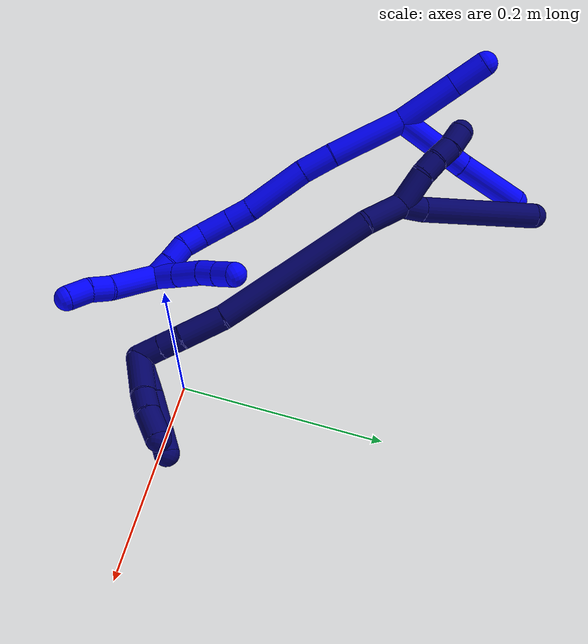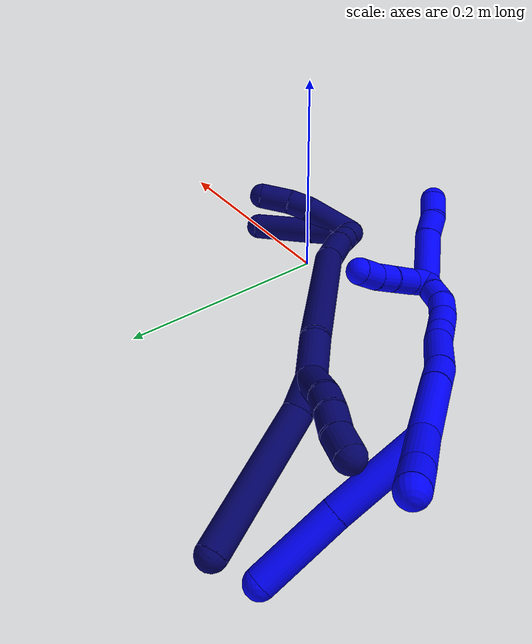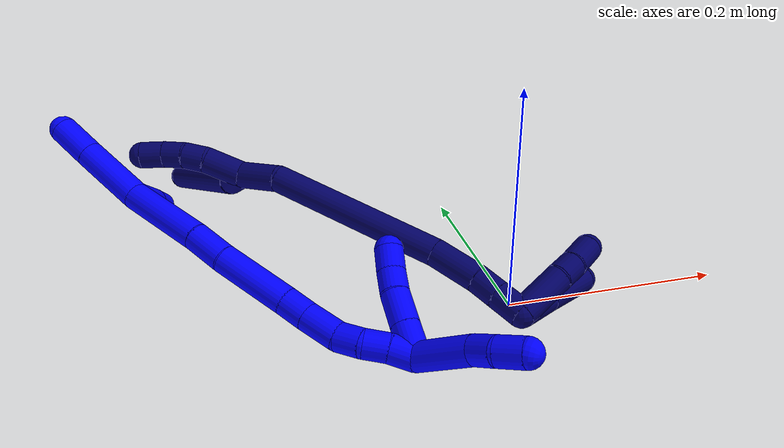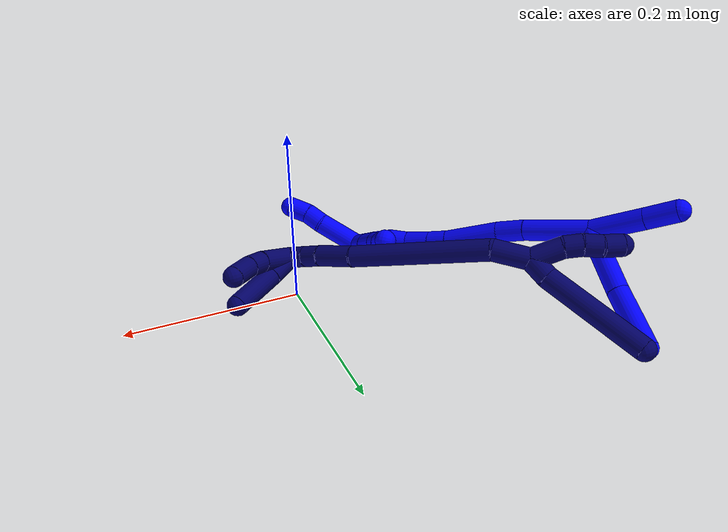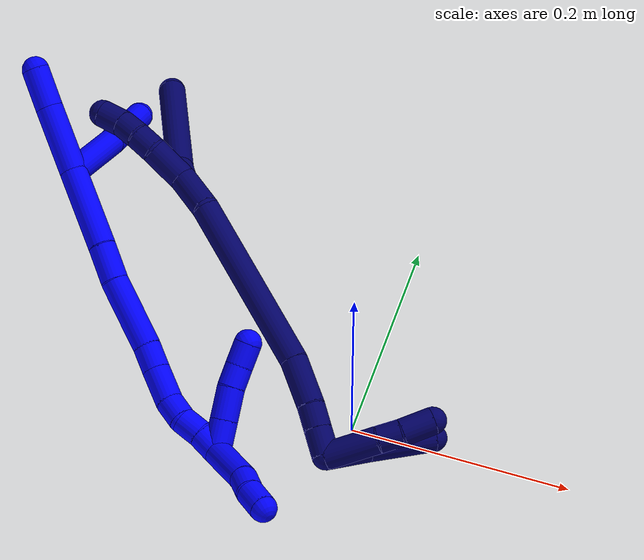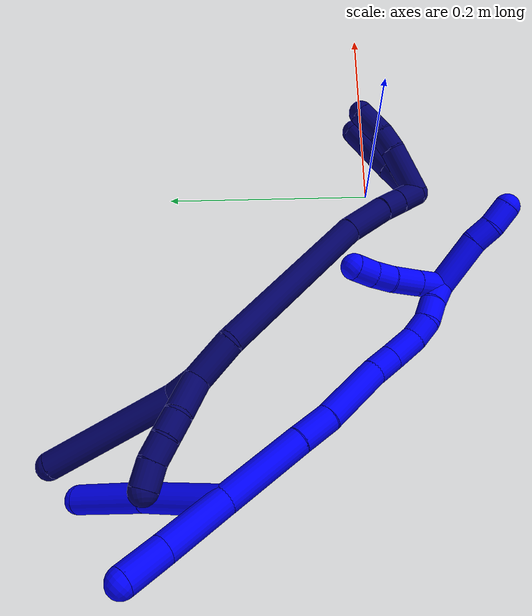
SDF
<sdf version="1.7">
 <world name="default">
  <model name="1">
   <static>0</static>
   <link name="1">
    <collision name="collision-cylinder-e_1_2_8">
     <pose>-0.029915 0.015747 0.020905 -0.645601 -0.85204 0.301301</pose>
     <geometry><cylinder><radius>0.0125</radius><length>0.079496</length></cylinder></geometry>
     <surface>
      <friction><ode><mu>1.16</mu><mu2>1.16</mu2><slip1>0</slip1><slip2>0</slip2></ode></friction>
      <contact><ode><kp>1e+06</kp><kd>1</kd><max_vel>0</max_vel><min_depth>0.001</min_depth></ode></contact>
     </surface>
    </collision>
    <visual name="visual-cylinder-e_1_2_8">
     <pose>-0.029915 0.015747 0.020905 -0.645601 -0.85204 0.301301</pose>
     <geometry><cylinder><radius>0.0125</radius><length>0.079496</length></cylinder></geometry>
     <material><ambient>0 0 1 1</ambient></material>
    </visual>
    <collision name="collision-cylinder-e_2_8_6">
     <pose>-0.085674 0.044643 0.061858 -0.580463 -0.822875 0.259179</pose>
     <geometry><cylinder><radius>0.0125</radius><length>0.070504</length></cylinder></geometry>
     <surface>
      <friction><ode><mu>1.16</mu><mu2>1.16</mu2><slip1>0</slip1><slip2>0</slip2></ode></friction>
      <contact><ode><kp>1e+06</kp><kd>1</kd><max_vel>0</max_vel><min_depth>0.001</min_depth></ode></contact>
     </surface>
    </collision>
    <visual name="visual-cylinder-e_2_8_6">
     <pose>-0.085674 0.044643 0.061858 -0.580463 -0.822875 0.259179</pose>
     <geometry><cylinder><radius>0.0125</radius><length>0.070504</length></cylinder></geometry>
     <material><ambient>0 0 1 1</ambient></material>
    </visual>
    <collision name="collision-cylinder-e_1_2_9">
     <pose>0.011663 0.009392 0.027526 -0.328805 0.381384 -0.064028</pose>
     <geometry><cylinder><radius>0.0125</radius><length>0.062671</length></cylinder></geometry>
     <surface>
      <friction><ode><mu>1.16</mu><mu2>1.16</mu2><slip1>0</slip1><slip2>0</slip2></ode></friction>
      <contact><ode><kp>1e+06</kp><kd>1</kd><max_vel>0</max_vel><min_depth>0.001</min_depth></ode></contact>
     </surface>
    </collision>
    <visual name="visual-cylinder-e_1_2_9">
     <pose>0.011663 0.009392 0.027526 -0.328805 0.381384 -0.064028</pose>
     <geometry><cylinder><radius>0.0125</radius><length>0.062671</length></cylinder></geometry>
     <material><ambient>0 0 1 1</ambient></material>
    </visual>
    <collision name="collision-cylinder-e_2_9_5">
     <pose>0.030401 0.024668 0.071291 -0.347682 0.388746 -0.069115</pose>
     <geometry><cylinder><radius>0.0125</radius><length>0.037329</length></cylinder></geometry>
     <surface>
      <friction><ode><mu>1.16</mu><mu2>1.16</mu2><slip1>0</slip1><slip2>0</slip2></ode></friction>
      <contact><ode><kp>1e+06</kp><kd>1</kd><max_vel>0</max_vel><min_depth>0.001</min_depth></ode></contact>
     </surface>
    </collision>
    <visual name="visual-cylinder-e_2_9_5">
     <pose>0.030401 0.024668 0.071291 -0.347682 0.388746 -0.069115</pose>
     <geometry><cylinder><radius>0.0125</radius><length>0.037329</length></cylinder></geometry>
     <material><ambient>0 0 1 1</ambient></material>
    </visual>
    <collision name="collision-cylinder-e_1_2_10">
     <pose>-0.006516 -0.009317 -0.037463 2.89785 -0.167205 -1.20006</pose>
     <geometry><cylinder><radius>0.0125</radius><length>0.0783</length></cylinder></geometry>
     <surface>
      <friction><ode><mu>1.16</mu><mu2>1.16</mu2><slip1>0</slip1><slip2>0</slip2></ode></friction>
      <contact><ode><kp>1e+06</kp><kd>1</kd><max_vel>0</max_vel><min_depth>0.001</min_depth></ode></contact>
     </surface>
    </collision>
    <visual name="visual-cylinder-e_1_2_10">
     <pose>-0.006516 -0.009317 -0.037463 2.89785 -0.167205 -1.20006</pose>
     <geometry><cylinder><radius>0.0125</radius><length>0.0783</length></cylinder></geometry>
     <material><ambient>0 0 1 1</ambient></material>
    </visual>
    <collision name="collision-cylinder-e_2_10_11">
     <pose>-0.017143 -0.023383 -0.090851 2.85172 -0.242556 -1.39143</pose>
     <geometry><cylinder><radius>0.0125</radius><length>0.034239</length></cylinder></geometry>
     <surface>
      <friction><ode><mu>1.16</mu><mu2>1.16</mu2><slip1>0</slip1><slip2>0</slip2></ode></friction>
      <contact><ode><kp>1e+06</kp><kd>1</kd><max_vel>0</max_vel><min_depth>0.001</min_depth></ode></contact>
     </surface>
    </collision>
    <visual name="visual-cylinder-e_2_10_11">
     <pose>-0.017143 -0.023383 -0.090851 2.85172 -0.242556 -1.39143</pose>
     <geometry><cylinder><radius>0.0125</radius><length>0.034239</length></cylinder></geometry>
     <material><ambient>0 0 1 1</ambient></material>
    </visual>
    <collision name="collision-cylinder-e_3_11_12">
     <pose>-0.032321 -0.034599 -0.13748 2.93404 -0.339058 -2.04837</pose>
     <geometry><cylinder><radius>0.0125</radius><length>0.066544</length></cylinder></geometry>
     <surface>
      <friction><ode><mu>1.16</mu><mu2>1.16</mu2><slip1>0</slip1><slip2>0</slip2></ode></friction>
      <contact><ode><kp>1e+06</kp><kd>1</kd><max_vel>0</max_vel><min_depth>0.001</min_depth></ode></contact>
     </surface>
    </collision>
    <visual name="visual-cylinder-e_3_11_12">
     <pose>-0.032321 -0.034599 -0.13748 2.93404 -0.339058 -2.04837</pose>
     <geometry><cylinder><radius>0.0125</radius><length>0.066544</length></cylinder></geometry>
     <material><ambient>0 0 1 1</ambient></material>
    </visual>
    <collision name="collision-cylinder-e_4_12_13">
     <pose>-0.046033 -0.043985 -0.179445 2.88788 -0.223622 -1.44369</pose>
     <geometry><cylinder><radius>0.0125</radius><length>0.023859</length></cylinder></geometry>
     <surface>
      <friction><ode><mu>1.16</mu><mu2>1.16</mu2><slip1>0</slip1><slip2>0</slip2></ode></friction>
      <contact><ode><kp>1e+06</kp><kd>1</kd><max_vel>0</max_vel><min_depth>0.001</min_depth></ode></contact>
     </surface>
    </collision>
    <visual name="visual-cylinder-e_4_12_13">
     <pose>-0.046033 -0.043985 -0.179445 2.88788 -0.223622 -1.44369</pose>
     <geometry><cylinder><radius>0.0125</radius><length>0.023859</length></cylinder></geometry>
     <material><ambient>0 0 1 1</ambient></material>
    </visual>
    <collision name="collision-cylinder-e_5_13_14">
     <pose>-0.051768 -0.050335 -0.206055 2.92175 -0.193927 -1.44478</pose>
     <geometry><cylinder><radius>0.0125</radius><length>0.032059</length></cylinder></geometry>
     <surface>
      <friction><ode><mu>1.16</mu><mu2>1.16</mu2><slip1>0</slip1><slip2>0</slip2></ode></friction>
      <contact><ode><kp>1e+06</kp><kd>1</kd><max_vel>0</max_vel><min_depth>0.001</min_depth></ode></contact>
     </surface>
    </collision>
    <visual name="visual-cylinder-e_5_13_14">
     <pose>-0.051768 -0.050335 -0.206055 2.92175 -0.193927 -1.44478</pose>
     <geometry><cylinder><radius>0.0125</radius><length>0.032059</length></cylinder></geometry>
     <material><ambient>0 0 1 1</ambient></material>
    </visual>
    <collision name="collision-cylinder-e_6_14_15">
     <pose>-0.055504 -0.05338 -0.232438 -3.10674 -0.05859 2.06838</pose>
     <geometry><cylinder><radius>0.0125</radius><length>0.022116</length></cylinder></geometry>
     <surface>
      <friction><ode><mu>1.16</mu><mu2>1.16</mu2><slip1>0</slip1><slip2>0</slip2></ode></friction>
      <contact><ode><kp>1e+06</kp><kd>1</kd><max_vel>0</max_vel><min_depth>0.001</min_depth></ode></contact>
     </surface>
    </collision>
    <visual name="visual-cylinder-e_6_14_15">
     <pose>-0.055504 -0.05338 -0.232438 -3.10674 -0.05859 2.06838</pose>
     <geometry><cylinder><radius>0.0125</radius><length>0.022116</length></cylinder></geometry>
     <material><ambient>0 0 1 1</ambient></material>
    </visual>
    <collision name="collision-cylinder-e_7_15_16">
     <pose>-0.059526 -0.050392 -0.253192 -2.87989 -0.323451 1.78405</pose>
     <geometry><cylinder><radius>0.0125</radius><length>0.02123</length></cylinder></geometry>
     <surface>
      <friction><ode><mu>1.16</mu><mu2>1.16</mu2><slip1>0</slip1><slip2>0</slip2></ode></friction>
      <contact><ode><kp>1e+06</kp><kd>1</kd><max_vel>0</max_vel><min_depth>0.001</min_depth></ode></contact>
     </surface>
    </collision>
    <visual name="visual-cylinder-e_7_15_16">
     <pose>-0.059526 -0.050392 -0.253192 -2.87989 -0.323451 1.78405</pose>
     <geometry><cylinder><radius>0.0125</radius><length>0.02123</length></cylinder></geometry>
     <material><ambient>0 0 1 1</ambient></material>
    </visual>
    <collision name="collision-cylinder-e_8_16_1">
     <pose>-0.066859 -0.04672 -0.272933 -3.03539 -0.374427 2.59448</pose>
     <geometry><cylinder><radius>0.0125</radius><length>0.021653</length></cylinder></geometry>
     <surface>
      <friction><ode><mu>1.16</mu><mu2>1.16</mu2><slip1>0</slip1><slip2>0</slip2></ode></friction>
      <contact><ode><kp>1e+06</kp><kd>1</kd><max_vel>0</max_vel><min_depth>0.001</min_depth></ode></contact>
     </surface>
    </collision>
    <visual name="visual-cylinder-e_8_16_1">
     <pose>-0.066859 -0.04672 -0.272933 -3.03539 -0.374427 2.59448</pose>
     <geometry><cylinder><radius>0.0125</radius><length>0.021653</length></cylinder></geometry>
     <material><ambient>0 0 1 1</ambient></material>
    </visual>
    <collision name="collision-cylinder-e_1_1_17">
     <pose>-0.061743 -0.040176 -0.307669 -2.92359 0.344227 -2.01786</pose>
     <geometry><cylinder><radius>0.0125</radius><length>0.053786</length></cylinder></geometry>
     <surface>
      <friction><ode><mu>1.16</mu><mu2>1.16</mu2><slip1>0</slip1><slip2>0</slip2></ode></friction>
      <contact><ode><kp>1e+06</kp><kd>1</kd><max_vel>0</max_vel><min_depth>0.001</min_depth></ode></contact>
     </surface>
    </collision>
    <visual name="visual-cylinder-e_1_1_17">
     <pose>-0.061743 -0.040176 -0.307669 -2.92359 0.344227 -2.01786</pose>
     <geometry><cylinder><radius>0.0125</radius><length>0.053786</length></cylinder></geometry>
     <material><ambient>0 0 1 1</ambient></material>
    </visual>
    <collision name="collision-cylinder-e_2_17_18">
     <pose>-0.048302 -0.034663 -0.342479 -3.13782 0.408232 -3.12335</pose>
     <geometry><cylinder><radius>0.0125</radius><length>0.021995</length></cylinder></geometry>
     <surface>
      <friction><ode><mu>1.16</mu><mu2>1.16</mu2><slip1>0</slip1><slip2>0</slip2></ode></friction>
      <contact><ode><kp>1e+06</kp><kd>1</kd><max_vel>0</max_vel><min_depth>0.001</min_depth></ode></contact>
     </surface>
    </collision>
    <visual name="visual-cylinder-e_2_17_18">
     <pose>-0.048302 -0.034663 -0.342479 -3.13782 0.408232 -3.12335</pose>
     <geometry><cylinder><radius>0.0125</radius><length>0.021995</length></cylinder></geometry>
     <material><ambient>0 0 1 1</ambient></material>
    </visual>
    <collision name="collision-cylinder-e_3_18_4">
     <pose>-0.041764 -0.033033 -0.364379 -3.00759 0.180365 -1.86479</pose>
     <geometry><cylinder><radius>0.0125</radius><length>0.024219</length></cylinder></geometry>
     <surface>
      <friction><ode><mu>1.16</mu><mu2>1.16</mu2><slip1>0</slip1><slip2>0</slip2></ode></friction>
      <contact><ode><kp>1e+06</kp><kd>1</kd><max_vel>0</max_vel><min_depth>0.001</min_depth></ode></contact>
     </surface>
    </collision>
    <visual name="visual-cylinder-e_3_18_4">
     <pose>-0.041764 -0.033033 -0.364379 -3.00759 0.180365 -1.86479</pose>
     <geometry><cylinder><radius>0.0125</radius><length>0.024219</length></cylinder></geometry>
     <material><ambient>0 0 1 1</ambient></material>
    </visual>
    <collision name="collision-cylinder-e_1_1_19">
     <pose>-0.068661 -0.034897 -0.274114 -0.882801 0.153756 -0.07276</pose>
     <geometry><cylinder><radius>0.0125</radius><length>0.028174</length></cylinder></geometry>
     <surface>
      <friction><ode><mu>1.16</mu><mu2>1.16</mu2><slip1>0</slip1><slip2>0</slip2></ode></friction>
      <contact><ode><kp>1e+06</kp><kd>1</kd><max_vel>0</max_vel><min_depth>0.001</min_depth></ode></contact>
     </surface>
    </collision>
    <visual name="visual-cylinder-e_1_1_19">
     <pose>-0.068661 -0.034897 -0.274114 -0.882801 0.153756 -0.07276</pose>
     <geometry><cylinder><radius>0.0125</radius><length>0.028174</length></cylinder></geometry>
     <material><ambient>0 0 1 1</ambient></material>
    </visual>
    <collision name="collision-cylinder-e_2_19_20">
     <pose>-0.063879 -0.012691 -0.256122 -0.896563 0.177182 -0.085385</pose>
     <geometry><cylinder><radius>0.0125</radius><length>0.029786</length></cylinder></geometry>
     <surface>
      <friction><ode><mu>1.16</mu><mu2>1.16</mu2><slip1>0</slip1><slip2>0</slip2></ode></friction>
      <contact><ode><kp>1e+06</kp><kd>1</kd><max_vel>0</max_vel><min_depth>0.001</min_depth></ode></contact>
     </surface>
    </collision>
    <visual name="visual-cylinder-e_2_19_20">
     <pose>-0.063879 -0.012691 -0.256122 -0.896563 0.177182 -0.085385</pose>
     <geometry><cylinder><radius>0.0125</radius><length>0.029786</length></cylinder></geometry>
     <material><ambient>0 0 1 1</ambient></material>
    </visual>
    <collision name="collision-cylinder-e_3_20_21">
     <pose>-0.060446 0.007303 -0.241547 -1.00514 0.079702 -0.043824</pose>
     <geometry><cylinder><radius>0.0125</radius><length>0.020299</length></cylinder></geometry>
     <surface>
      <friction><ode><mu>1.16</mu><mu2>1.16</mu2><slip1>0</slip1><slip2>0</slip2></ode></friction>
      <contact><ode><kp>1e+06</kp><kd>1</kd><max_vel>0</max_vel><min_depth>0.001</min_depth></ode></contact>
     </surface>
    </collision>
    <visual name="visual-cylinder-e_3_20_21">
     <pose>-0.060446 0.007303 -0.241547 -1.00514 0.079702 -0.043824</pose>
     <geometry><cylinder><radius>0.0125</radius><length>0.020299</length></cylinder></geometry>
     <material><ambient>0 0 1 1</ambient></material>
    </visual>
    <collision name="collision-cylinder-e_4_21_3">
     <pose>-0.05765 0.025302 -0.231148 -1.08645 0.183896 -0.111239</pose>
     <geometry><cylinder><radius>0.0125</radius><length>0.02174</length></cylinder></geometry>
     <surface>
      <friction><ode><mu>1.16</mu><mu2>1.16</mu2><slip1>0</slip1><slip2>0</slip2></ode></friction>
      <contact><ode><kp>1e+06</kp><kd>1</kd><max_vel>0</max_vel><min_depth>0.001</min_depth></ode></contact>
     </surface>
    </collision>
    <visual name="visual-cylinder-e_4_21_3">
     <pose>-0.05765 0.025302 -0.231148 -1.08645 0.183896 -0.111239</pose>
     <geometry><cylinder><radius>0.0125</radius><length>0.02174</length></cylinder></geometry>
     <material><ambient>0 0 1 1</ambient></material>
    </visual>
    <collision name="collision-sphere-3">
     <pose>-0.055662 0.03476 -0.226172 0 -0 0</pose>
     <geometry><sphere><radius>0.0125</radius></sphere></geometry>
     <surface>
      <friction><ode><mu>1.16</mu><mu2>1.16</mu2><slip1>0</slip1><slip2>0</slip2></ode></friction>
      <contact><ode><kp>1e+06</kp><kd>1</kd><max_vel>0</max_vel><min_depth>0.001</min_depth></ode></contact>
     </surface>
    </collision>
    <visual name="visual-sphere-3">
     <pose>-0.055662 0.03476 -0.226172 0 -0 0</pose>
     <geometry><sphere><radius>0.0125</radius></sphere></geometry>
     <material><ambient>0 0 1 1</ambient></material>
    </visual>
    <collision name="collision-sphere-21">
     <pose>-0.059638 0.015845 -0.236124 0 -0 0</pose>
     <geometry><sphere><radius>0.0125</radius></sphere></geometry>
     <surface>
      <friction><ode><mu>1.16</mu><mu2>1.16</mu2><slip1>0</slip1><slip2>0</slip2></ode></friction>
      <contact><ode><kp>1e+06</kp><kd>1</kd><max_vel>0</max_vel><min_depth>0.001</min_depth></ode></contact>
     </surface>
    </collision>
    <visual name="visual-sphere-21">
     <pose>-0.059638 0.015845 -0.236124 0 -0 0</pose>
     <geometry><sphere><radius>0.0125</radius></sphere></geometry>
     <material><ambient>0 0 1 1</ambient></material>
    </visual>
    <collision name="collision-sphere-20">
     <pose>-0.061254 -0.001238 -0.246969 0 -0 0</pose>
     <geometry><sphere><radius>0.0125</radius></sphere></geometry>
     <surface>
      <friction><ode><mu>1.16</mu><mu2>1.16</mu2><slip1>0</slip1><slip2>0</slip2></ode></friction>
      <contact><ode><kp>1e+06</kp><kd>1</kd><max_vel>0</max_vel><min_depth>0.001</min_depth></ode></contact>
     </surface>
    </collision>
    <visual name="visual-sphere-20">
     <pose>-0.061254 -0.001238 -0.246969 0 -0 0</pose>
     <geometry><sphere><radius>0.0125</radius></sphere></geometry>
     <material><ambient>0 0 1 1</ambient></material>
    </visual>
    <collision name="collision-sphere-19">
     <pose>-0.066504 -0.024143 -0.265274 0 -0 0</pose>
     <geometry><sphere><radius>0.0125</radius></sphere></geometry>
     <surface>
      <friction><ode><mu>1.16</mu><mu2>1.16</mu2><slip1>0</slip1><slip2>0</slip2></ode></friction>
      <contact><ode><kp>1e+06</kp><kd>1</kd><max_vel>0</max_vel><min_depth>0.001</min_depth></ode></contact>
     </surface>
    </collision>
    <visual name="visual-sphere-19">
     <pose>-0.066504 -0.024143 -0.265274 0 -0 0</pose>
     <geometry><sphere><radius>0.0125</radius></sphere></geometry>
     <material><ambient>0 0 1 1</ambient></material>
    </visual>
    <collision name="collision-sphere-10">
     <pose>-0.013031 -0.018633 -0.074926 0 -0 0</pose>
     <geometry><sphere><radius>0.0125</radius></sphere></geometry>
     <surface>
      <friction><ode><mu>1.16</mu><mu2>1.16</mu2><slip1>0</slip1><slip2>0</slip2></ode></friction>
      <contact><ode><kp>1e+06</kp><kd>1</kd><max_vel>0</max_vel><min_depth>0.001</min_depth></ode></contact>
     </surface>
    </collision>
    <visual name="visual-sphere-10">
     <pose>-0.013031 -0.018633 -0.074926 0 -0 0</pose>
     <geometry><sphere><radius>0.0125</radius></sphere></geometry>
     <material><ambient>0 0 1 1</ambient></material>
    </visual>
    <collision name="collision-sphere-5">
     <pose>0.037475 0.030553 0.087529 0 -0 0</pose>
     <geometry><sphere><radius>0.0125</radius></sphere></geometry>
     <surface>
      <friction><ode><mu>1.16</mu><mu2>1.16</mu2><slip1>0</slip1><slip2>0</slip2></ode></friction>
      <contact><ode><kp>1e+06</kp><kd>1</kd><max_vel>0</max_vel><min_depth>0.001</min_depth></ode></contact>
     </surface>
    </collision>
    <visual name="visual-sphere-5">
     <pose>0.037475 0.030553 0.087529 0 -0 0</pose>
     <geometry><sphere><radius>0.0125</radius></sphere></geometry>
     <material><ambient>0 0 1 1</ambient></material>
    </visual>
    <collision name="collision-sphere-6">
     <pose>-0.111517 0.057791 0.081906 0 -0 0</pose>
     <geometry><sphere><radius>0.0125</radius></sphere></geometry>
     <surface>
      <friction><ode><mu>1.16</mu><mu2>1.16</mu2><slip1>0</slip1><slip2>0</slip2></ode></friction>
      <contact><ode><kp>1e+06</kp><kd>1</kd><max_vel>0</max_vel><min_depth>0.001</min_depth></ode></contact>
     </surface>
    </collision>
    <visual name="visual-sphere-6">
     <pose>-0.111517 0.057791 0.081906 0 -0 0</pose>
     <geometry><sphere><radius>0.0125</radius></sphere></geometry>
     <material><ambient>0 0 1 1</ambient></material>
    </visual>
    <collision name="collision-sphere-9">
     <pose>0.023327 0.018783 0.055052 0 -0 0</pose>
     <geometry><sphere><radius>0.0125</radius></sphere></geometry>
     <surface>
      <friction><ode><mu>1.16</mu><mu2>1.16</mu2><slip1>0</slip1><slip2>0</slip2></ode></friction>
      <contact><ode><kp>1e+06</kp><kd>1</kd><max_vel>0</max_vel><min_depth>0.001</min_depth></ode></contact>
     </surface>
    </collision>
    <visual name="visual-sphere-9">
     <pose>0.023327 0.018783 0.055052 0 -0 0</pose>
     <geometry><sphere><radius>0.0125</radius></sphere></geometry>
     <material><ambient>0 0 1 1</ambient></material>
    </visual>
    <collision name="collision-sphere-2">
     <geometry><sphere><radius>0.0125</radius></sphere></geometry>
     <surface>
      <friction><ode><mu>1.16</mu><mu2>1.16</mu2><slip1>0</slip1><slip2>0</slip2></ode></friction>
      <contact><ode><kp>1e+06</kp><kd>1</kd><max_vel>0</max_vel><min_depth>0.001</min_depth></ode></contact>
     </surface>
    </collision>
    <visual name="visual-sphere-2">
     <geometry><sphere><radius>0.0125</radius></sphere></geometry>
     <material><ambient>0 0 1 1</ambient></material>
    </visual>
    <collision name="collision-sphere-8">
     <pose>-0.059831 0.031494 0.041809 0 -0 0</pose>
     <geometry><sphere><radius>0.0125</radius></sphere></geometry>
     <surface>
      <friction><ode><mu>1.16</mu><mu2>1.16</mu2><slip1>0</slip1><slip2>0</slip2></ode></friction>
      <contact><ode><kp>1e+06</kp><kd>1</kd><max_vel>0</max_vel><min_depth>0.001</min_depth></ode></contact>
     </surface>
    </collision>
    <visual name="visual-sphere-8">
     <pose>-0.059831 0.031494 0.041809 0 -0 0</pose>
     <geometry><sphere><radius>0.0125</radius></sphere></geometry>
     <material><ambient>0 0 1 1</ambient></material>
    </visual>
    <collision name="collision-sphere-11">
     <pose>-0.021255 -0.028133 -0.106776 0 -0 0</pose>
     <geometry><sphere><radius>0.0125</radius></sphere></geometry>
     <surface>
      <friction><ode><mu>1.16</mu><mu2>1.16</mu2><slip1>0</slip1><slip2>0</slip2></ode></friction>
      <contact><ode><kp>1e+06</kp><kd>1</kd><max_vel>0</max_vel><min_depth>0.001</min_depth></ode></contact>
     </surface>
    </collision>
    <visual name="visual-sphere-11">
     <pose>-0.021255 -0.028133 -0.106776 0 -0 0</pose>
     <geometry><sphere><radius>0.0125</radius></sphere></geometry>
     <material><ambient>0 0 1 1</ambient></material>
    </visual>
    <collision name="collision-sphere-12">
     <pose>-0.043387 -0.041065 -0.168185 0 -0 0</pose>
     <geometry><sphere><radius>0.0125</radius></sphere></geometry>
     <surface>
      <friction><ode><mu>1.16</mu><mu2>1.16</mu2><slip1>0</slip1><slip2>0</slip2></ode></friction>
      <contact><ode><kp>1e+06</kp><kd>1</kd><max_vel>0</max_vel><min_depth>0.001</min_depth></ode></contact>
     </surface>
    </collision>
    <visual name="visual-sphere-12">
     <pose>-0.043387 -0.041065 -0.168185 0 -0 0</pose>
     <geometry><sphere><radius>0.0125</radius></sphere></geometry>
     <material><ambient>0 0 1 1</ambient></material>
    </visual>
    <collision name="collision-sphere-13">
     <pose>-0.048678 -0.046905 -0.190705 0 -0 0</pose>
     <geometry><sphere><radius>0.0125</radius></sphere></geometry>
     <surface>
      <friction><ode><mu>1.16</mu><mu2>1.16</mu2><slip1>0</slip1><slip2>0</slip2></ode></friction>
      <contact><ode><kp>1e+06</kp><kd>1</kd><max_vel>0</max_vel><min_depth>0.001</min_depth></ode></contact>
     </surface>
    </collision>
    <visual name="visual-sphere-13">
     <pose>-0.048678 -0.046905 -0.190705 0 -0 0</pose>
     <geometry><sphere><radius>0.0125</radius></sphere></geometry>
     <material><ambient>0 0 1 1</ambient></material>
    </visual>
    <collision name="collision-sphere-14">
     <pose>-0.054857 -0.053765 -0.221406 0 -0 0</pose>
     <geometry><sphere><radius>0.0125</radius></sphere></geometry>
     <surface>
      <friction><ode><mu>1.16</mu><mu2>1.16</mu2><slip1>0</slip1><slip2>0</slip2></ode></friction>
      <contact><ode><kp>1e+06</kp><kd>1</kd><max_vel>0</max_vel><min_depth>0.001</min_depth></ode></contact>
     </surface>
    </collision>
    <visual name="visual-sphere-14">
     <pose>-0.054857 -0.053765 -0.221406 0 -0 0</pose>
     <geometry><sphere><radius>0.0125</radius></sphere></geometry>
     <material><ambient>0 0 1 1</ambient></material>
    </visual>
    <collision name="collision-sphere-15">
     <pose>-0.056152 -0.052996 -0.24347 0 -0 0</pose>
     <geometry><sphere><radius>0.0125</radius></sphere></geometry>
     <surface>
      <friction><ode><mu>1.16</mu><mu2>1.16</mu2><slip1>0</slip1><slip2>0</slip2></ode></friction>
      <contact><ode><kp>1e+06</kp><kd>1</kd><max_vel>0</max_vel><min_depth>0.001</min_depth></ode></contact>
     </surface>
    </collision>
    <visual name="visual-sphere-15">
     <pose>-0.056152 -0.052996 -0.24347 0 -0 0</pose>
     <geometry><sphere><radius>0.0125</radius></sphere></geometry>
     <material><ambient>0 0 1 1</ambient></material>
    </visual>
    <collision name="collision-sphere-16">
     <pose>-0.062899 -0.047788 -0.262914 0 -0 0</pose>
     <geometry><sphere><radius>0.0125</radius></sphere></geometry>
     <surface>
      <friction><ode><mu>1.16</mu><mu2>1.16</mu2><slip1>0</slip1><slip2>0</slip2></ode></friction>
      <contact><ode><kp>1e+06</kp><kd>1</kd><max_vel>0</max_vel><min_depth>0.001</min_depth></ode></contact>
     </surface>
    </collision>
    <visual name="visual-sphere-16">
     <pose>-0.062899 -0.047788 -0.262914 0 -0 0</pose>
     <geometry><sphere><radius>0.0125</radius></sphere></geometry>
     <material><ambient>0 0 1 1</ambient></material>
    </visual>
    <collision name="collision-sphere-1">
     <pose>-0.070819 -0.045651 -0.282953 0 -0 0</pose>
     <geometry><sphere><radius>0.0125</radius></sphere></geometry>
     <surface>
      <friction><ode><mu>1.16</mu><mu2>1.16</mu2><slip1>0</slip1><slip2>0</slip2></ode></friction>
      <contact><ode><kp>1e+06</kp><kd>1</kd><max_vel>0</max_vel><min_depth>0.001</min_depth></ode></contact>
     </surface>
    </collision>
    <visual name="visual-sphere-1">
     <pose>-0.070819 -0.045651 -0.282953 0 -0 0</pose>
     <geometry><sphere><radius>0.0125</radius></sphere></geometry>
     <material><ambient>0 0 1 1</ambient></material>
    </visual>
    <collision name="collision-sphere-18">
     <pose>-0.043936 -0.034624 -0.352573 0 -0 0</pose>
     <geometry><sphere><radius>0.0125</radius></sphere></geometry>
     <surface>
      <friction><ode><mu>1.16</mu><mu2>1.16</mu2><slip1>0</slip1><slip2>0</slip2></ode></friction>
      <contact><ode><kp>1e+06</kp><kd>1</kd><max_vel>0</max_vel><min_depth>0.001</min_depth></ode></contact>
     </surface>
    </collision>
    <visual name="visual-sphere-18">
     <pose>-0.043936 -0.034624 -0.352573 0 -0 0</pose>
     <geometry><sphere><radius>0.0125</radius></sphere></geometry>
     <material><ambient>0 0 1 1</ambient></material>
    </visual>
    <collision name="collision-sphere-17">
     <pose>-0.052668 -0.034701 -0.332386 0 -0 0</pose>
     <geometry><sphere><radius>0.0125</radius></sphere></geometry>
     <surface>
      <friction><ode><mu>1.16</mu><mu2>1.16</mu2><slip1>0</slip1><slip2>0</slip2></ode></friction>
      <contact><ode><kp>1e+06</kp><kd>1</kd><max_vel>0</max_vel><min_depth>0.001</min_depth></ode></contact>
     </surface>
    </collision>
    <visual name="visual-sphere-17">
     <pose>-0.052668 -0.034701 -0.332386 0 -0 0</pose>
     <geometry><sphere><radius>0.0125</radius></sphere></geometry>
     <material><ambient>0 0 1 1</ambient></material>
    </visual>
    <collision name="collision-sphere-4">
     <pose>-0.039591 -0.031441 -0.376186 0 -0 0</pose>
     <geometry><sphere><radius>0.0125</radius></sphere></geometry>
     <surface>
      <friction><ode><mu>1.16</mu><mu2>1.16</mu2><slip1>0</slip1><slip2>0</slip2></ode></friction>
      <contact><ode><kp>1e+06</kp><kd>1</kd><max_vel>0</max_vel><min_depth>0.001</min_depth></ode></contact>
     </surface>
    </collision>
    <visual name="visual-sphere-4">
     <pose>-0.039591 -0.031441 -0.376186 0 -0 0</pose>
     <geometry><sphere><radius>0.0125</radius></sphere></geometry>
     <material><ambient>0 0 1 1</ambient></material>
    </visual>
    <inertial>
     <pose>-0.037613 -0.01098 -0.120377 0 -0 0</pose>
     <mass>0.75</mass>
     <inertia><ixx>0</ixx><ixy>0</ixy><ixz>0</ixz><iyy>5.3e-05</iyy><iyz>0</iyz><izz>1.5e-05</izz></inertia>
    </inertial>
   </link>
   <pose>-0.309119 0.135326 0.082994 1.65279 -1.06345 -2.39699</pose>
  </model>
  <model name="7">
   <static>0</static>
   <link name="7">
    <collision name="collision-cylinder-e_1_2_8">
     <pose>-0.011783 -0.004262 0.00367 0.859853 -1.12546 -0.563079</pose>
     <geometry><cylinder><radius>0.0125</radius><length>0.026112</length></cylinder></geometry>
     <surface>
      <friction><ode><mu>1.16</mu><mu2>1.16</mu2><slip1>0</slip1><slip2>0</slip2></ode></friction>
      <contact><ode><kp>1e+06</kp><kd>1</kd><max_vel>0</max_vel><min_depth>0.001</min_depth></ode></contact>
     </surface>
    </collision>
    <visual name="visual-cylinder-e_1_2_8">
     <pose>-0.011783 -0.004262 0.00367 0.859853 -1.12546 -0.563079</pose>
     <geometry><cylinder><radius>0.0125</radius><length>0.026112</length></cylinder></geometry>
     <material><ambient>0.003922 0 0.403922 1</ambient></material>
    </visual>
    <collision name="collision-cylinder-e_2_8_6">
     <pose>-0.082969 -0.011176 0.024694 0.151705 -1.28344 -0.113454</pose>
     <geometry><cylinder><radius>0.0125</radius><length>0.123888</length></cylinder></geometry>
     <surface>
      <friction><ode><mu>1.16</mu><mu2>1.16</mu2><slip1>0</slip1><slip2>0</slip2></ode></friction>
      <contact><ode><kp>1e+06</kp><kd>1</kd><max_vel>0</max_vel><min_depth>0.001</min_depth></ode></contact>
     </surface>
    </collision>
    <visual name="visual-cylinder-e_2_8_6">
     <pose>-0.082969 -0.011176 0.024694 0.151705 -1.28344 -0.113454</pose>
     <geometry><cylinder><radius>0.0125</radius><length>0.123888</length></cylinder></geometry>
     <material><ambient>0.003922 0 0.403922 1</ambient></material>
    </visual>
    <collision name="collision-cylinder-e_1_2_9">
     <pose>-0.005764 0.008232 0.015375 -0.491597 -0.319199 0.080721</pose>
     <geometry><cylinder><radius>0.0125</radius><length>0.036737</length></cylinder></geometry>
     <surface>
      <friction><ode><mu>1.16</mu><mu2>1.16</mu2><slip1>0</slip1><slip2>0</slip2></ode></friction>
      <contact><ode><kp>1e+06</kp><kd>1</kd><max_vel>0</max_vel><min_depth>0.001</min_depth></ode></contact>
     </surface>
    </collision>
    <visual name="visual-cylinder-e_1_2_9">
     <pose>-0.005764 0.008232 0.015375 -0.491597 -0.319199 0.080721</pose>
     <geometry><cylinder><radius>0.0125</radius><length>0.036737</length></cylinder></geometry>
     <material><ambient>0.003922 0 0.403922 1</ambient></material>
    </visual>
    <collision name="collision-cylinder-e_2_9_10">
     <pose>-0.016286 0.019042 0.039516 -0.285898 -0.480148 0.070438</pose>
     <geometry><cylinder><radius>0.0125</radius><length>0.020602</length></cylinder></geometry>
     <surface>
      <friction><ode><mu>1.16</mu><mu2>1.16</mu2><slip1>0</slip1><slip2>0</slip2></ode></friction>
      <contact><ode><kp>1e+06</kp><kd>1</kd><max_vel>0</max_vel><min_depth>0.001</min_depth></ode></contact>
     </surface>
    </collision>
    <visual name="visual-cylinder-e_2_9_10">
     <pose>-0.016286 0.019042 0.039516 -0.285898 -0.480148 0.070438</pose>
     <geometry><cylinder><radius>0.0125</radius><length>0.020602</length></cylinder></geometry>
     <material><ambient>0.003922 0 0.403922 1</ambient></material>
    </visual>
    <collision name="collision-cylinder-e_3_10_11">
     <pose>-0.026647 0.022473 0.056857 -0.09938 -0.576381 0.029483</pose>
     <geometry><cylinder><radius>0.0125</radius><length>0.020559</length></cylinder></geometry>
     <surface>
      <friction><ode><mu>1.16</mu><mu2>1.16</mu2><slip1>0</slip1><slip2>0</slip2></ode></friction>
      <contact><ode><kp>1e+06</kp><kd>1</kd><max_vel>0</max_vel><min_depth>0.001</min_depth></ode></contact>
     </surface>
    </collision>
    <visual name="visual-cylinder-e_3_10_11">
     <pose>-0.026647 0.022473 0.056857 -0.09938 -0.576381 0.029483</pose>
     <geometry><cylinder><radius>0.0125</radius><length>0.020559</length></cylinder></geometry>
     <material><ambient>0.003922 0 0.403922 1</ambient></material>
    </visual>
    <collision name="collision-cylinder-e_4_11_5">
     <pose>-0.036267 0.02364 0.075724 -0.030285 -0.372066 0.0057</pose>
     <geometry><cylinder><radius>0.0125</radius><length>0.022102</length></cylinder></geometry>
     <surface>
      <friction><ode><mu>1.16</mu><mu2>1.16</mu2><slip1>0</slip1><slip2>0</slip2></ode></friction>
      <contact><ode><kp>1e+06</kp><kd>1</kd><max_vel>0</max_vel><min_depth>0.001</min_depth></ode></contact>
     </surface>
    </collision>
    <visual name="visual-cylinder-e_4_11_5">
     <pose>-0.036267 0.02364 0.075724 -0.030285 -0.372066 0.0057</pose>
     <geometry><cylinder><radius>0.0125</radius><length>0.022102</length></cylinder></geometry>
     <material><ambient>0.003922 0 0.403922 1</ambient></material>
    </visual>
    <collision name="collision-cylinder-e_1_2_12">
     <pose>0.015654 -0.001607 -0.014192 3.02881 0.83117 2.88714</pose>
     <geometry><cylinder><radius>0.0125</radius><length>0.042382</length></cylinder></geometry>
     <surface>
      <friction><ode><mu>1.16</mu><mu2>1.16</mu2><slip1>0</slip1><slip2>0</slip2></ode></friction>
      <contact><ode><kp>1e+06</kp><kd>1</kd><max_vel>0</max_vel><min_depth>0.001</min_depth></ode></contact>
     </surface>
    </collision>
    <visual name="visual-cylinder-e_1_2_12">
     <pose>0.015654 -0.001607 -0.014192 3.02881 0.83117 2.88714</pose>
     <geometry><cylinder><radius>0.0125</radius><length>0.042382</length></cylinder></geometry>
     <material><ambient>0.003922 0 0.403922 1</ambient></material>
    </visual>
    <collision name="collision-cylinder-e_2_12_13">
     <pose>0.084292 -0.035436 -0.082975 2.60838 0.696213 1.85127</pose>
     <geometry><cylinder><radius>0.0125</radius><length>0.165233</length></cylinder></geometry>
     <surface>
      <friction><ode><mu>1.16</mu><mu2>1.16</mu2><slip1>0</slip1><slip2>0</slip2></ode></friction>
      <contact><ode><kp>1e+06</kp><kd>1</kd><max_vel>0</max_vel><min_depth>0.001</min_depth></ode></contact>
     </surface>
    </collision>
    <visual name="visual-cylinder-e_2_12_13">
     <pose>0.084292 -0.035436 -0.082975 2.60838 0.696213 1.85127</pose>
     <geometry><cylinder><radius>0.0125</radius><length>0.165233</length></cylinder></geometry>
     <material><ambient>0.003922 0 0.403922 1</ambient></material>
    </visual>
    <collision name="collision-cylinder-e_3_13_14">
     <pose>0.153496 -0.077342 -0.149447 2.4577 0.813634 1.76067</pose>
     <geometry><cylinder><radius>0.0125</radius><length>0.044638</length></cylinder></geometry>
     <surface>
      <friction><ode><mu>1.16</mu><mu2>1.16</mu2><slip1>0</slip1><slip2>0</slip2></ode></friction>
      <contact><ode><kp>1e+06</kp><kd>1</kd><max_vel>0</max_vel><min_depth>0.001</min_depth></ode></contact>
     </surface>
    </collision>
    <visual name="visual-cylinder-e_3_13_14">
     <pose>0.153496 -0.077342 -0.149447 2.4577 0.813634 1.76067</pose>
     <geometry><cylinder><radius>0.0125</radius><length>0.044638</length></cylinder></geometry>
     <material><ambient>0.003922 0 0.403922 1</ambient></material>
    </visual>
    <collision name="collision-cylinder-e_4_14_15">
     <pose>0.177636 -0.09284 -0.166617 2.30893 0.789315 1.51102</pose>
     <geometry><cylinder><radius>0.0125</radius><length>0.02231</length></cylinder></geometry>
     <surface>
      <friction><ode><mu>1.16</mu><mu2>1.16</mu2><slip1>0</slip1><slip2>0</slip2></ode></friction>
      <contact><ode><kp>1e+06</kp><kd>1</kd><max_vel>0</max_vel><min_depth>0.001</min_depth></ode></contact>
     </surface>
    </collision>
    <visual name="visual-cylinder-e_4_14_15">
     <pose>0.177636 -0.09284 -0.166617 2.30893 0.789315 1.51102</pose>
     <geometry><cylinder><radius>0.0125</radius><length>0.02231</length></cylinder></geometry>
     <material><ambient>0.003922 0 0.403922 1</ambient></material>
    </visual>
    <collision name="collision-cylinder-e_5_15_1">
     <pose>0.194545 -0.105312 -0.177952 2.30814 0.785041 1.50394</pose>
     <geometry><cylinder><radius>0.0125</radius><length>0.025437</length></cylinder></geometry>
     <surface>
      <friction><ode><mu>1.16</mu><mu2>1.16</mu2><slip1>0</slip1><slip2>0</slip2></ode></friction>
      <contact><ode><kp>1e+06</kp><kd>1</kd><max_vel>0</max_vel><min_depth>0.001</min_depth></ode></contact>
     </surface>
    </collision>
    <visual name="visual-cylinder-e_5_15_1">
     <pose>0.194545 -0.105312 -0.177952 2.30814 0.785041 1.50394</pose>
     <geometry><cylinder><radius>0.0125</radius><length>0.025437</length></cylinder></geometry>
     <material><ambient>0.003922 0 0.403922 1</ambient></material>
    </visual>
    <collision name="collision-cylinder-e_1_1_16">
     <pose>0.193524 -0.111348 -0.201123 -3.10521 -0.5288 3.00739</pose>
     <geometry><cylinder><radius>0.0125</radius><length>0.039688</length></cylinder></geometry>
     <surface>
      <friction><ode><mu>1.16</mu><mu2>1.16</mu2><slip1>0</slip1><slip2>0</slip2></ode></friction>
      <contact><ode><kp>1e+06</kp><kd>1</kd><max_vel>0</max_vel><min_depth>0.001</min_depth></ode></contact>
     </surface>
    </collision>
    <visual name="visual-cylinder-e_1_1_16">
     <pose>0.193524 -0.111348 -0.201123 -3.10521 -0.5288 3.00739</pose>
     <geometry><cylinder><radius>0.0125</radius><length>0.039688</length></cylinder></geometry>
     <material><ambient>0.003922 0 0.403922 1</ambient></material>
    </visual>
    <collision name="collision-cylinder-e_2_16_4">
     <pose>0.169406 -0.109707 -0.244879 -3.10339 -0.486779 2.98804</pose>
     <geometry><cylinder><radius>0.0125</radius><length>0.060312</length></cylinder></geometry>
     <surface>
      <friction><ode><mu>1.16</mu><mu2>1.16</mu2><slip1>0</slip1><slip2>0</slip2></ode></friction>
      <contact><ode><kp>1e+06</kp><kd>1</kd><max_vel>0</max_vel><min_depth>0.001</min_depth></ode></contact>
     </surface>
    </collision>
    <visual name="visual-cylinder-e_2_16_4">
     <pose>0.169406 -0.109707 -0.244879 -3.10339 -0.486779 2.98804</pose>
     <geometry><cylinder><radius>0.0125</radius><length>0.060312</length></cylinder></geometry>
     <material><ambient>0.003922 0 0.403922 1</ambient></material>
    </visual>
    <collision name="collision-cylinder-e_1_1_17">
     <pose>0.197682 -0.101457 -0.205372 -2.68437 -0.240973 0.959571</pose>
     <geometry><cylinder><radius>0.0125</radius><length>0.049053</length></cylinder></geometry>
     <surface>
      <friction><ode><mu>1.16</mu><mu2>1.16</mu2><slip1>0</slip1><slip2>0</slip2></ode></friction>
      <contact><ode><kp>1e+06</kp><kd>1</kd><max_vel>0</max_vel><min_depth>0.001</min_depth></ode></contact>
     </surface>
    </collision>
    <visual name="visual-cylinder-e_1_1_17">
     <pose>0.197682 -0.101457 -0.205372 -2.68437 -0.240973 0.959571</pose>
     <geometry><cylinder><radius>0.0125</radius><length>0.049053</length></cylinder></geometry>
     <material><ambient>0.003922 0 0.403922 1</ambient></material>
    </visual>
    <collision name="collision-cylinder-e_2_17_18">
     <pose>0.188047 -0.087544 -0.23603 -2.79083 -0.365222 1.61207</pose>
     <geometry><cylinder><radius>0.0125</radius><length>0.021175</length></cylinder></geometry>
     <surface>
      <friction><ode><mu>1.16</mu><mu2>1.16</mu2><slip1>0</slip1><slip2>0</slip2></ode></friction>
      <contact><ode><kp>1e+06</kp><kd>1</kd><max_vel>0</max_vel><min_depth>0.001</min_depth></ode></contact>
     </surface>
    </collision>
    <visual name="visual-cylinder-e_2_17_18">
     <pose>0.188047 -0.087544 -0.23603 -2.79083 -0.365222 1.61207</pose>
     <geometry><cylinder><radius>0.0125</radius><length>0.021175</length></cylinder></geometry>
     <material><ambient>0.003922 0 0.403922 1</ambient></material>
    </visual>
    <collision name="collision-cylinder-e_3_18_3">
     <pose>0.176835 -0.08015 -0.257582 -2.82663 -0.522629 2.06993</pose>
     <geometry><cylinder><radius>0.0125</radius><length>0.029772</length></cylinder></geometry>
     <surface>
      <friction><ode><mu>1.16</mu><mu2>1.16</mu2><slip1>0</slip1><slip2>0</slip2></ode></friction>
      <contact><ode><kp>1e+06</kp><kd>1</kd><max_vel>0</max_vel><min_depth>0.001</min_depth></ode></contact>
     </surface>
    </collision>
    <visual name="visual-cylinder-e_3_18_3">
     <pose>0.176835 -0.08015 -0.257582 -2.82663 -0.522629 2.06993</pose>
     <geometry><cylinder><radius>0.0125</radius><length>0.029772</length></cylinder></geometry>
     <material><ambient>0.003922 0 0.403922 1</ambient></material>
    </visual>
    <collision name="collision-sphere-3">
     <pose>0.169405 -0.076155 -0.269846 0 -0 0</pose>
     <geometry><sphere><radius>0.0125</radius></sphere></geometry>
     <surface>
      <friction><ode><mu>1.16</mu><mu2>1.16</mu2><slip1>0</slip1><slip2>0</slip2></ode></friction>
      <contact><ode><kp>1e+06</kp><kd>1</kd><max_vel>0</max_vel><min_depth>0.001</min_depth></ode></contact>
     </surface>
    </collision>
    <visual name="visual-sphere-3">
     <pose>0.169405 -0.076155 -0.269846 0 -0 0</pose>
     <geometry><sphere><radius>0.0125</radius></sphere></geometry>
     <material><ambient>0.003922 0 0.403922 1</ambient></material>
    </visual>
    <collision name="collision-sphere-11">
     <pose>-0.032249 0.023328 0.065434 0 -0 0</pose>
     <geometry><sphere><radius>0.0125</radius></sphere></geometry>
     <surface>
      <friction><ode><mu>1.16</mu><mu2>1.16</mu2><slip1>0</slip1><slip2>0</slip2></ode></friction>
      <contact><ode><kp>1e+06</kp><kd>1</kd><max_vel>0</max_vel><min_depth>0.001</min_depth></ode></contact>
     </surface>
    </collision>
    <visual name="visual-sphere-11">
     <pose>-0.032249 0.023328 0.065434 0 -0 0</pose>
     <geometry><sphere><radius>0.0125</radius></sphere></geometry>
     <material><ambient>0.003922 0 0.403922 1</ambient></material>
    </visual>
    <collision name="collision-sphere-10">
     <pose>-0.021044 0.021618 0.048281 0 -0 0</pose>
     <geometry><sphere><radius>0.0125</radius></sphere></geometry>
     <surface>
      <friction><ode><mu>1.16</mu><mu2>1.16</mu2><slip1>0</slip1><slip2>0</slip2></ode></friction>
      <contact><ode><kp>1e+06</kp><kd>1</kd><max_vel>0</max_vel><min_depth>0.001</min_depth></ode></contact>
     </surface>
    </collision>
    <visual name="visual-sphere-10">
     <pose>-0.021044 0.021618 0.048281 0 -0 0</pose>
     <geometry><sphere><radius>0.0125</radius></sphere></geometry>
     <material><ambient>0.003922 0 0.403922 1</ambient></material>
    </visual>
    <collision name="collision-sphere-6">
     <pose>-0.142373 -0.013829 0.042048 0 -0 0</pose>
     <geometry><sphere><radius>0.0125</radius></sphere></geometry>
     <surface>
      <friction><ode><mu>1.16</mu><mu2>1.16</mu2><slip1>0</slip1><slip2>0</slip2></ode></friction>
      <contact><ode><kp>1e+06</kp><kd>1</kd><max_vel>0</max_vel><min_depth>0.001</min_depth></ode></contact>
     </surface>
    </collision>
    <visual name="visual-sphere-6">
     <pose>-0.142373 -0.013829 0.042048 0 -0 0</pose>
     <geometry><sphere><radius>0.0125</radius></sphere></geometry>
     <material><ambient>0.003922 0 0.403922 1</ambient></material>
    </visual>
    <collision name="collision-sphere-9">
     <pose>-0.011528 0.016465 0.03075 0 -0 0</pose>
     <geometry><sphere><radius>0.0125</radius></sphere></geometry>
     <surface>
      <friction><ode><mu>1.16</mu><mu2>1.16</mu2><slip1>0</slip1><slip2>0</slip2></ode></friction>
      <contact><ode><kp>1e+06</kp><kd>1</kd><max_vel>0</max_vel><min_depth>0.001</min_depth></ode></contact>
     </surface>
    </collision>
    <visual name="visual-sphere-9">
     <pose>-0.011528 0.016465 0.03075 0 -0 0</pose>
     <geometry><sphere><radius>0.0125</radius></sphere></geometry>
     <material><ambient>0.003922 0 0.403922 1</ambient></material>
    </visual>
    <collision name="collision-sphere-2">
     <geometry><sphere><radius>0.0125</radius></sphere></geometry>
     <surface>
      <friction><ode><mu>1.16</mu><mu2>1.16</mu2><slip1>0</slip1><slip2>0</slip2></ode></friction>
      <contact><ode><kp>1e+06</kp><kd>1</kd><max_vel>0</max_vel><min_depth>0.001</min_depth></ode></contact>
     </surface>
    </collision>
    <visual name="visual-sphere-2">
     <geometry><sphere><radius>0.0125</radius></sphere></geometry>
     <material><ambient>0.003922 0 0.403922 1</ambient></material>
    </visual>
    <collision name="collision-sphere-8">
     <pose>-0.023565 -0.008523 0.00734 0 -0 0</pose>
     <geometry><sphere><radius>0.0125</radius></sphere></geometry>
     <surface>
      <friction><ode><mu>1.16</mu><mu2>1.16</mu2><slip1>0</slip1><slip2>0</slip2></ode></friction>
      <contact><ode><kp>1e+06</kp><kd>1</kd><max_vel>0</max_vel><min_depth>0.001</min_depth></ode></contact>
     </surface>
    </collision>
    <visual name="visual-sphere-8">
     <pose>-0.023565 -0.008523 0.00734 0 -0 0</pose>
     <geometry><sphere><radius>0.0125</radius></sphere></geometry>
     <material><ambient>0.003922 0 0.403922 1</ambient></material>
    </visual>
    <collision name="collision-sphere-5">
     <pose>-0.040284 0.023952 0.086014 0 -0 0</pose>
     <geometry><sphere><radius>0.0125</radius></sphere></geometry>
     <surface>
      <friction><ode><mu>1.16</mu><mu2>1.16</mu2><slip1>0</slip1><slip2>0</slip2></ode></friction>
      <contact><ode><kp>1e+06</kp><kd>1</kd><max_vel>0</max_vel><min_depth>0.001</min_depth></ode></contact>
     </surface>
    </collision>
    <visual name="visual-sphere-5">
     <pose>-0.040284 0.023952 0.086014 0 -0 0</pose>
     <geometry><sphere><radius>0.0125</radius></sphere></geometry>
     <material><ambient>0.003922 0 0.403922 1</ambient></material>
    </visual>
    <collision name="collision-sphere-12">
     <pose>0.031309 -0.003215 -0.028385 0 -0 0</pose>
     <geometry><sphere><radius>0.0125</radius></sphere></geometry>
     <surface>
      <friction><ode><mu>1.16</mu><mu2>1.16</mu2><slip1>0</slip1><slip2>0</slip2></ode></friction>
      <contact><ode><kp>1e+06</kp><kd>1</kd><max_vel>0</max_vel><min_depth>0.001</min_depth></ode></contact>
     </surface>
    </collision>
    <visual name="visual-sphere-12">
     <pose>0.031309 -0.003215 -0.028385 0 -0 0</pose>
     <geometry><sphere><radius>0.0125</radius></sphere></geometry>
     <material><ambient>0.003922 0 0.403922 1</ambient></material>
    </visual>
    <collision name="collision-sphere-13">
     <pose>0.137275 -0.067657 -0.137565 0 -0 0</pose>
     <geometry><sphere><radius>0.0125</radius></sphere></geometry>
     <surface>
      <friction><ode><mu>1.16</mu><mu2>1.16</mu2><slip1>0</slip1><slip2>0</slip2></ode></friction>
      <contact><ode><kp>1e+06</kp><kd>1</kd><max_vel>0</max_vel><min_depth>0.001</min_depth></ode></contact>
     </surface>
    </collision>
    <visual name="visual-sphere-13">
     <pose>0.137275 -0.067657 -0.137565 0 -0 0</pose>
     <geometry><sphere><radius>0.0125</radius></sphere></geometry>
     <material><ambient>0.003922 0 0.403922 1</ambient></material>
    </visual>
    <collision name="collision-sphere-14">
     <pose>0.169717 -0.087028 -0.16133 0 -0 0</pose>
     <geometry><sphere><radius>0.0125</radius></sphere></geometry>
     <surface>
      <friction><ode><mu>1.16</mu><mu2>1.16</mu2><slip1>0</slip1><slip2>0</slip2></ode></friction>
      <contact><ode><kp>1e+06</kp><kd>1</kd><max_vel>0</max_vel><min_depth>0.001</min_depth></ode></contact>
     </surface>
    </collision>
    <visual name="visual-sphere-14">
     <pose>0.169717 -0.087028 -0.16133 0 -0 0</pose>
     <geometry><sphere><radius>0.0125</radius></sphere></geometry>
     <material><ambient>0.003922 0 0.403922 1</ambient></material>
    </visual>
    <collision name="collision-sphere-15">
     <pose>0.185555 -0.098652 -0.171903 0 -0 0</pose>
     <geometry><sphere><radius>0.0125</radius></sphere></geometry>
     <surface>
      <friction><ode><mu>1.16</mu><mu2>1.16</mu2><slip1>0</slip1><slip2>0</slip2></ode></friction>
      <contact><ode><kp>1e+06</kp><kd>1</kd><max_vel>0</max_vel><min_depth>0.001</min_depth></ode></contact>
     </surface>
    </collision>
    <visual name="visual-sphere-15">
     <pose>0.185555 -0.098652 -0.171903 0 -0 0</pose>
     <geometry><sphere><radius>0.0125</radius></sphere></geometry>
     <material><ambient>0.003922 0 0.403922 1</ambient></material>
    </visual>
    <collision name="collision-sphere-1">
     <pose>0.203535 -0.111972 -0.184001 0 -0 0</pose>
     <geometry><sphere><radius>0.0125</radius></sphere></geometry>
     <surface>
      <friction><ode><mu>1.16</mu><mu2>1.16</mu2><slip1>0</slip1><slip2>0</slip2></ode></friction>
      <contact><ode><kp>1e+06</kp><kd>1</kd><max_vel>0</max_vel><min_depth>0.001</min_depth></ode></contact>
     </surface>
    </collision>
    <visual name="visual-sphere-1">
     <pose>0.203535 -0.111972 -0.184001 0 -0 0</pose>
     <geometry><sphere><radius>0.0125</radius></sphere></geometry>
     <material><ambient>0.003922 0 0.403922 1</ambient></material>
    </visual>
    <collision name="collision-sphere-18">
     <pose>0.184266 -0.084146 -0.245317 0 -0 0</pose>
     <geometry><sphere><radius>0.0125</radius></sphere></geometry>
     <surface>
      <friction><ode><mu>1.16</mu><mu2>1.16</mu2><slip1>0</slip1><slip2>0</slip2></ode></friction>
      <contact><ode><kp>1e+06</kp><kd>1</kd><max_vel>0</max_vel><min_depth>0.001</min_depth></ode></contact>
     </surface>
    </collision>
    <visual name="visual-sphere-18">
     <pose>0.184266 -0.084146 -0.245317 0 -0 0</pose>
     <geometry><sphere><radius>0.0125</radius></sphere></geometry>
     <material><ambient>0.003922 0 0.403922 1</ambient></material>
    </visual>
    <collision name="collision-sphere-16">
     <pose>0.183512 -0.110725 -0.218245 0 -0 0</pose>
     <geometry><sphere><radius>0.0125</radius></sphere></geometry>
     <surface>
      <friction><ode><mu>1.16</mu><mu2>1.16</mu2><slip1>0</slip1><slip2>0</slip2></ode></friction>
      <contact><ode><kp>1e+06</kp><kd>1</kd><max_vel>0</max_vel><min_depth>0.001</min_depth></ode></contact>
     </surface>
    </collision>
    <visual name="visual-sphere-16">
     <pose>0.183512 -0.110725 -0.218245 0 -0 0</pose>
     <geometry><sphere><radius>0.0125</radius></sphere></geometry>
     <material><ambient>0.003922 0 0.403922 1</ambient></material>
    </visual>
    <collision name="collision-sphere-4">
     <pose>0.1553 -0.108689 -0.271513 0 -0 0</pose>
     <geometry><sphere><radius>0.0125</radius></sphere></geometry>
     <surface>
      <friction><ode><mu>1.16</mu><mu2>1.16</mu2><slip1>0</slip1><slip2>0</slip2></ode></friction>
      <contact><ode><kp>1e+06</kp><kd>1</kd><max_vel>0</max_vel><min_depth>0.001</min_depth></ode></contact>
     </surface>
    </collision>
    <visual name="visual-sphere-4">
     <pose>0.1553 -0.108689 -0.271513 0 -0 0</pose>
     <geometry><sphere><radius>0.0125</radius></sphere></geometry>
     <material><ambient>0.003922 0 0.403922 1</ambient></material>
    </visual>
    <collision name="collision-sphere-17">
     <pose>0.191829 -0.090942 -0.226743 0 -0 0</pose>
     <geometry><sphere><radius>0.0125</radius></sphere></geometry>
     <surface>
      <friction><ode><mu>1.16</mu><mu2>1.16</mu2><slip1>0</slip1><slip2>0</slip2></ode></friction>
      <contact><ode><kp>1e+06</kp><kd>1</kd><max_vel>0</max_vel><min_depth>0.001</min_depth></ode></contact>
     </surface>
    </collision>
    <visual name="visual-sphere-17">
     <pose>0.191829 -0.090942 -0.226743 0 -0 0</pose>
     <geometry><sphere><radius>0.0125</radius></sphere></geometry>
     <material><ambient>0.003922 0 0.403922 1</ambient></material>
    </visual>
    <inertial>
     <pose>0.07295 -0.045593 -0.089789 0 -0 0</pose>
     <mass>0.75</mass>
     <inertia><ixx>0.00025</ixx><ixy>0</ixy><ixz>0</ixz><iyy>0.000725</iyy><iyz>0</iyz><izz>5.6e-05</izz></inertia>
    </inertial>
   </link>
   <pose>-0.212797 0.159673 0.08192 1.53405 -0.278174 -1.46108</pose>
  </model>
 </world>
</sdf>
